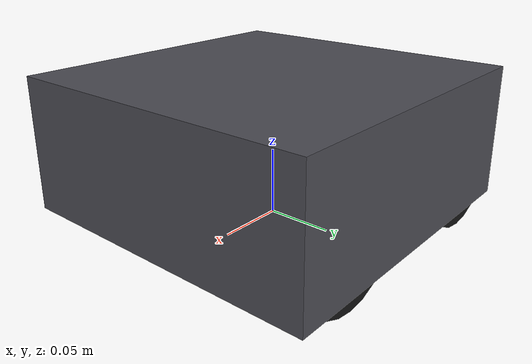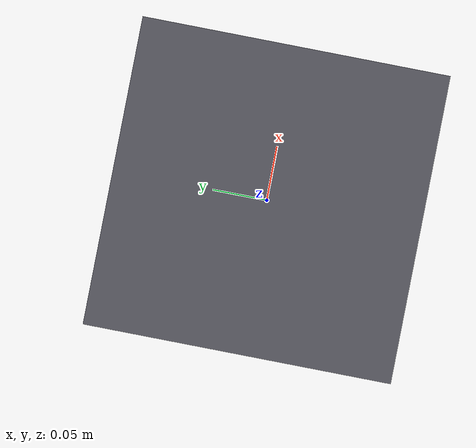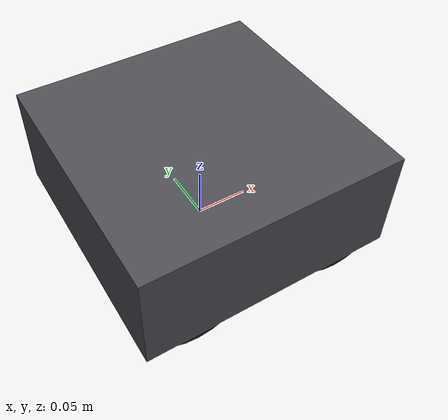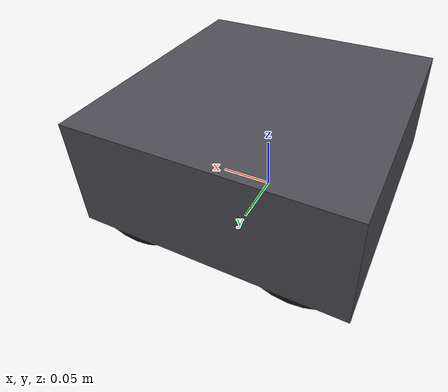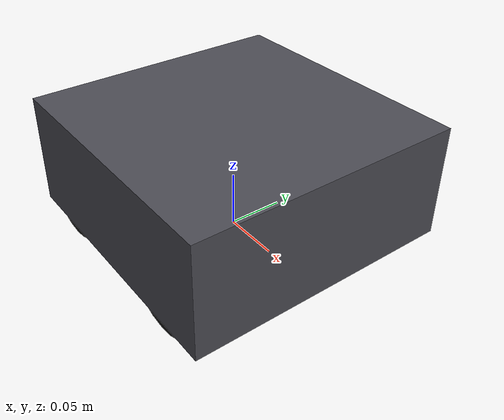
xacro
<?xml version="1.0"?>
<robot name="ars_robot" xmlns:xacro="http://www.ros.org/wiki/xacro">

  <!-- Real geometry -->
  <xacro:property name="wheelbase" value="0.142"/>
  <xacro:property name="track_width" value="0.195"/>
  <xacro:property name="wheel_radius" value="0.0485"/>

  <!-- Placeholder geometry -->
  <xacro:property name="wheel_width" value="0.04"/>
  <xacro:property name="chassis_length" value="0.24"/>
  <xacro:property name="chassis_width" value="0.24"/>
  <xacro:property name="chassis_height" value="0.10"/>
  <xacro:property name="ground_clearance" value="0.01"/>

  <xacro:property name="half_wb" value="${wheelbase / 2.0}"/>
  <xacro:property name="half_tw" value="${track_width / 2.0}"/>

  <material name="chassis_grey"><color rgba="0.30 0.30 0.33 1.0"/></material>
  <material name="wheel_black"><color rgba="0.08 0.08 0.08 1.0"/></material>
  <material name="marker_yellow"><color rgba="0.95 0.80 0.10 1.0"/></material>
  <material name="lidar_blue"><color rgba="0.20 0.45 0.85 1.0"/></material>

  <link name="base_link">
    <visual>
      <origin xyz="0 0 ${ground_clearance + chassis_height / 2.0}" rpy="0 0 0"/>
      <geometry>
        <box size="${chassis_length} ${chassis_width} ${chassis_height}"/>
      </geometry>
      <material name="chassis_grey"/>
    </visual>
  </link>

  <xacro:macro name="wheel" params="prefix x_offset y_offset">
    <link name="${prefix}_wheel_link">
      <visual>
        <origin xyz="0 0 0" rpy="${pi/2} 0 0"/>
        <geometry>
          <cylinder radius="${wheel_radius}" length="${wheel_width}"/>
        </geometry>
        <material name="wheel_black"/>
      </visual>
      <visual>
        <origin xyz="${wheel_radius * 0.6} 0 0" rpy="0 0 0"/>
        <geometry>
          <box size="${wheel_radius * 0.7} 0.012 ${wheel_width * 1.05}"/>
        </geometry>
        <material name="marker_yellow"/>
      </visual>
    </link>

    <joint name="${prefix}_wheel_joint" type="continuous">
      <parent link="base_link"/>
      <child link="${prefix}_wheel_link"/>
      <!-- z = wheel_radius so the wheel's BOTTOM touches the floor (z=0),
           not its center; a bare "0" here put half the wheel underground. -->
      <origin xyz="${x_offset} ${y_offset} ${wheel_radius}" rpy="0 0 0"/>
      <axis xyz="0 1 0"/>
    </joint>
  </xacro:macro>

  <xacro:wheel prefix="front_left"  x_offset="${half_wb}"  y_offset="${half_tw}"/>
  <xacro:wheel prefix="front_right" x_offset="${half_wb}"  y_offset="${-half_tw}"/>
  <xacro:wheel prefix="rear_left"   x_offset="${-half_wb}" y_offset="${half_tw}"/>
  <xacro:wheel prefix="rear_right"  x_offset="${-half_wb}" y_offset="${-half_tw}"/>

  <!-- LIDAR mount: matches ydlidar_launch.py's real (0,0,0.02) static
       transform, so this display and the live /scan agree on laser_frame. -->
  <link name="laser_frame">
    <visual>
      <geometry><cylinder radius="0.03" length="0.03"/></geometry>
      <material name="lidar_blue"/>
    </visual>
  </link>
  <joint name="laser_joint" type="fixed">
    <parent link="base_link"/>
    <child link="laser_frame"/>
    <origin xyz="0 0 0.02" rpy="0 0 0"/>
  </joint>

</robot>
